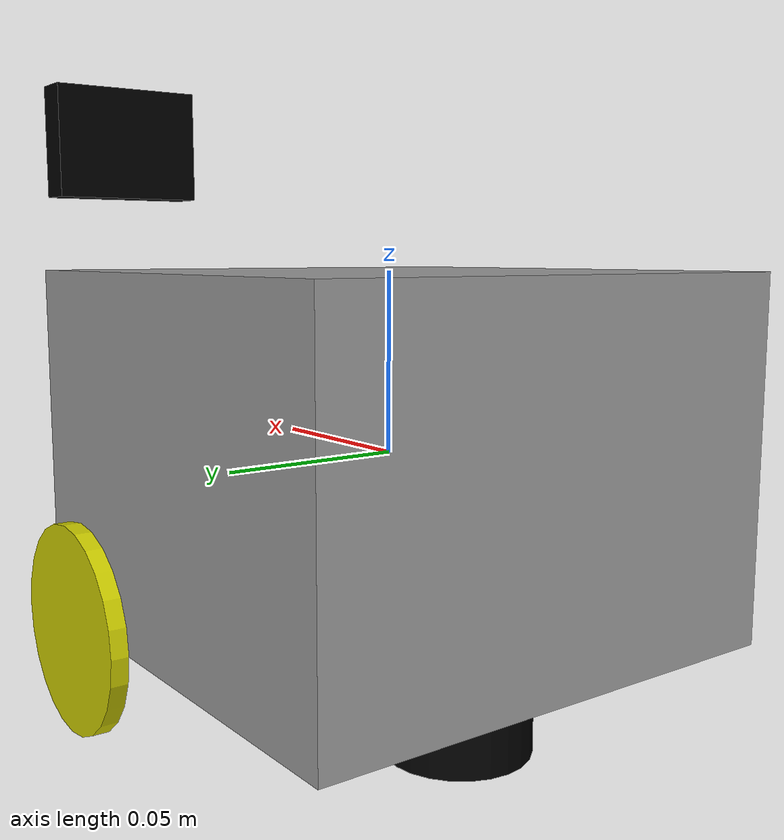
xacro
<?xml version="1.0"?>
<robot xmlns:xacro="http://www.ros.org/wiki/xacro" name="jimmy">

	<gazebo>
	  <plugin name="gazebo_ros_control" filename="libgazebo_ros_control.so">
	    <robotNamespace>/james</robotNamespace>
      	<robotSimType>gazebo_ros_control/DefaultRobotHWSim</robotSimType>
	  </plugin>
	</gazebo>

	<xacro:property name="box_length" value=".14" />
	<xacro:property name="box_width" value=".14" />
	<xacro:property name="box_height" value=".1" />

	<xacro:property name="wheel_diam" value=".06" />
	<xacro:property name="wheel_width" value=".005" />

	<xacro:property name="wheel_axis_offset" value=".05" />

	<xacro:property name="tail_wheel_diam" value="0.01"/>
	<xacro:property name="tail_wheel_width" value=".003" />

	<xacro:property name="tail_wheel_offset" value="-0.03" />

	<material name="grey">
		<color rgba="0.6 0.6 0.6 1" />
	</material>

	<material name="yellow">
		<color rgba="0.8 0.8 0 1" />
	</material>

	<material name="black">
		<color rgba="0 0 0 1" />
	</material>

	<link name="base_link">
		<collision>
			<geometry>
				<box size="${box_length} ${box_width} ${box_height}" />
			</geometry>
		</collision>
		<visual>
			<geometry>
				<box size="${box_length} ${box_width} ${box_height}" />
			</geometry>
			<material name="grey"/>
		</visual>
		<xacro:cube_inertial origin_xyz="0 0 0" mass="5" width="${box_width}" height="${box_height}" depth="${box_length}"/>
	</link>

	<gazebo reference="base_link">
	  	<material>Gazebo/Grey</material>
	</gazebo>

	<link name="wheel_l">
		<collision>
			<geometry>
				<cylinder radius="${wheel_diam/2}" length="${wheel_width}"/>
			</geometry>
			<origin xyz="0 ${wheel_width/2} 0" rpy="1.57 0 0"/>
		</collision>
		<visual>
			<geometry>
				<cylinder radius="${wheel_diam/2}" length="${wheel_width}"/>
			</geometry>
			<material name="yellow"/>
			<origin xyz="0 ${wheel_width/2} 0" rpy="1.57 0 0"/>
		</visual>
		<xacro:cube_inertial origin_xyz="0 0 0" mass="0.5" width="${wheel_width}" height="${wheel_diam}" depth="${wheel_diam}"/>
	</link>

	<gazebo reference="wheel_l">
	  	<material>Gazebo/Yellow</material>
	  	<mu1>100</mu1>
	  	<mu2>100</mu2>
	</gazebo>

	<joint name="base_to_wheel_l" type="continuous">
		<axis xyz="0 1 0" />
		<parent link="base_link" />
		<child link="wheel_l" />
		<origin xyz="${wheel_axis_offset} ${box_width/2} ${-box_height/2}" />
	</joint>

	<transmission name="trans_l">
      <type>transmission_interface/SimpleTransmission</type>
      <joint name="base_to_wheel_l">
        <hardwareInterface>VelocityJointInterface</hardwareInterface>
      </joint>
      <actuator name="motor_l">
        <mechanicalReduction>1</mechanicalReduction>
        <hardwareInterface>VelocityJointInterface</hardwareInterface>
      </actuator>
  	</transmission>

	<link name="wheel_r">
		<visual>
			<geometry>
				<cylinder radius="${wheel_diam/2}" length="${wheel_width}"/>
			</geometry>
			<material name="yellow"/>
			<origin xyz="0 ${-wheel_width/2} 0" rpy="1.57 0 0"/>
		</visual>
		<collision>
			<geometry>
				<cylinder radius="${wheel_diam/2}" length="${wheel_width}"/>
			</geometry>
			<origin xyz="0 ${-wheel_width/2} 0" rpy="1.57 0 0"/>
		</collision>
		<xacro:cube_inertial origin_xyz="0 0 0" mass="0.5" width="${wheel_width}" height="${wheel_diam}" depth="${wheel_diam}"/>
	</link>

	<gazebo reference="wheel_r">
	  	<material>Gazebo/Yellow</material>
	  	<mu1>100</mu1>
	  	<mu2>100</mu2>
	</gazebo>

	<joint name="base_to_wheel_r" type="continuous">
		<axis xyz="0 1 0" />
		<parent link="base_link" />
		<child link="wheel_r" />
		<origin xyz="${wheel_axis_offset} ${-box_width/2} ${-box_height/2}" />
	</joint>

	<transmission name="trans_r">
      <type>transmission_interface/SimpleTransmission</type>
      <joint name="base_to_wheel_r">
        <hardwareInterface>VelocityJointInterface</hardwareInterface>
      </joint>
      <actuator name="motor_r">
        <mechanicalReduction>1</mechanicalReduction>
        <hardwareInterface>VelocityJointInterface</hardwareInterface>
      </actuator>
  	</transmission>

	<link name="tail_wheel_shaft">
		<visual>
			<geometry>
				<cylinder radius="0.02" length="${(wheel_diam-tail_wheel_diam)/2}"/>
			</geometry>
			<material name="black"/>
			<origin xyz="0 0 ${(wheel_diam-tail_wheel_diam)/4}" />
		</visual>
		<xacro:cube_inertial origin_xyz="0 0 0" mass="0.1" width="0.04" height="${(wheel_diam-tail_wheel_diam)/4}" depth="0.04"/>
	</link>

	<gazebo reference="tail_wheel_shaft">
	  	<material>Gazebo/Black</material>
	</gazebo>

	<link name="tail_wheel">
		<visual>
			<geometry>
				<cylinder radius="${tail_wheel_diam/2}" length="${tail_wheel_width}"/>
			</geometry>
			<material name="black"/>
			<origin xyz="0 0 0" rpy="1.57 0 0"/>
		</visual>
		<collision>
			<geometry>
				<cylinder radius="${tail_wheel_diam/2}" length="${tail_wheel_width}"/>
			</geometry>
			<origin xyz="0 0 0" rpy="1.57 0 0"/>
		</collision>
		<xacro:cube_inertial origin_xyz="0 0 0" mass="0.2" width="${tail_wheel_width}" height="${tail_wheel_diam}" depth="${tail_wheel_diam}"/>
	</link>

	<gazebo reference="tail_wheel">
	  	<material>Gazebo/Black</material>
	</gazebo>

	<joint name="base_to_tail_wheel_shaft" type="continuous">
		<axis xyz="0 0 1" />
		<parent link="base_link" />
		<child link="tail_wheel_shaft" />
		<origin xyz="${tail_wheel_offset} 0 ${-box_height/2-(wheel_diam-tail_wheel_diam)/2}" />
	</joint>

	<joint name="tail_shaft_to_wheel" type="continuous">
		<axis xyz="0 1 0" />
		<parent link="tail_wheel_shaft" />
		<child link="tail_wheel" />
		<origin xyz="${-tail_wheel_diam/2} 0 0" />
	</joint>

	<link name="raspicam">
		<visual>
			<geometry>
				<box size="0.04 0.01 0.03" />
			</geometry>
			<material name="black"/>
			<origin xyz="0 0 -0.015"/>
		</visual>
		<xacro:cube_inertial origin_xyz="0 0 0" mass="0.01" width="0.01" height="0.03" depth="0.04"/>
	</link>

	<joint name="base_to_camera" type="fixed">
		<parent link="base_link" />
		<child link="raspicam" />
		<origin xyz="0.06 0.05 ${box_height}" rpy="0 0 -1.57"/>
	</joint>

	<link name="laser">

	</link>

	<joint name="base_to_laser" type="fixed">
		<parent link="base_link"/>
		<child link="laser"/>
		<origin xyz="0 0 0.10" rpy="0 0 -1.57"/>
	</joint>

	<xacro:macro name="cube_inertial" params="origin_xyz mass width height depth">
		<inertial>
			<origin xyz="${origin_xyz}"/>
			<mass value="${mass}" />
			<inertia	ixx="${mass/12*(height*height+depth*depth)}" 	ixy="0.0" 	ixz="0.0"
									iyy="${mass/12*(width*width+depth*depth)}" 	iyz="0.0"
												izz="${mass/12*(width*width+height*height)}" />
		</inertial>
	</xacro:macro>
	<gazebo>
	  <plugin name="gazebo_ros_control" filename="libgazebo_ros_control.so">
      	<robotSimType>gazebo_ros_control/DefaultRobotHWSim</robotSimType>
	  </plugin>
	</gazebo>
</robot>
